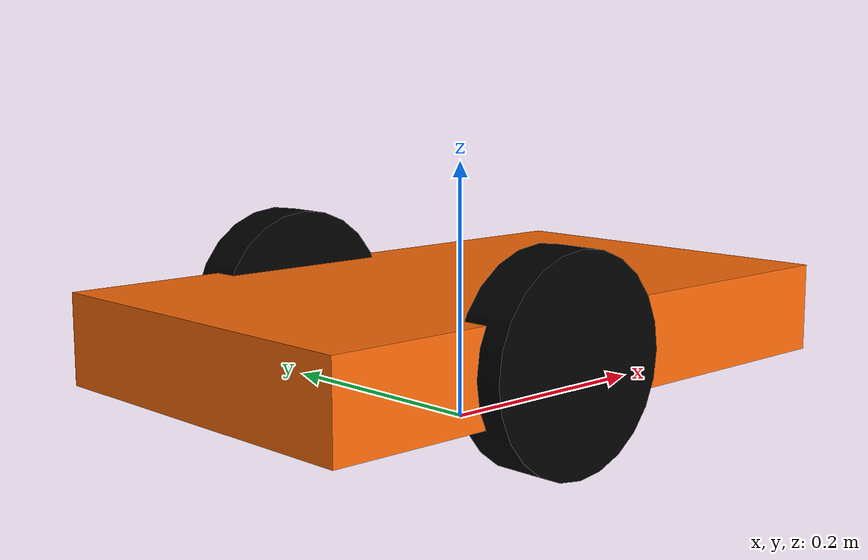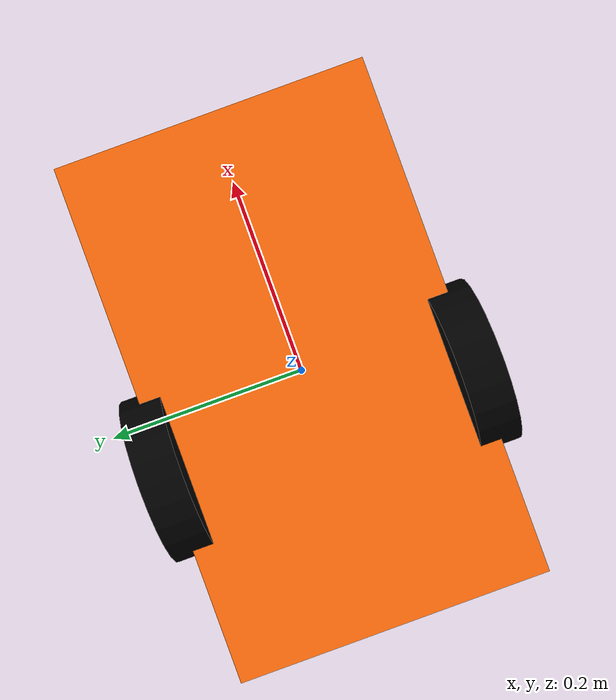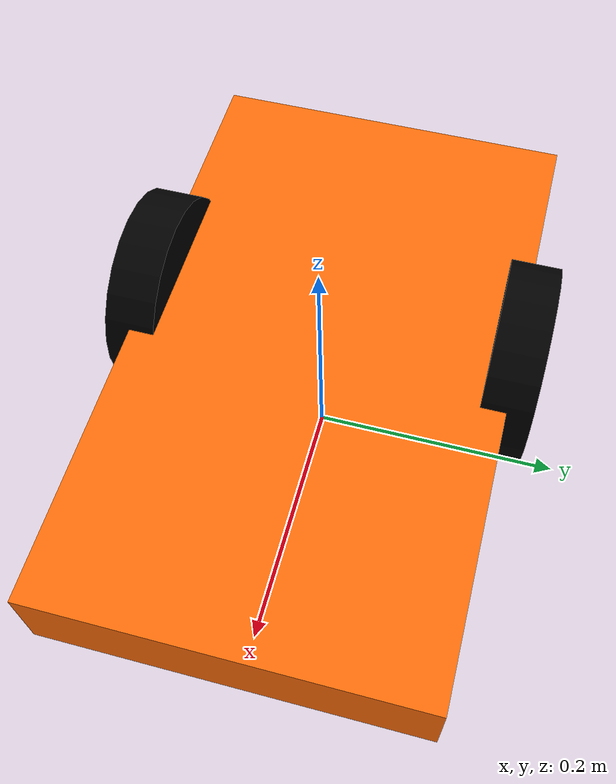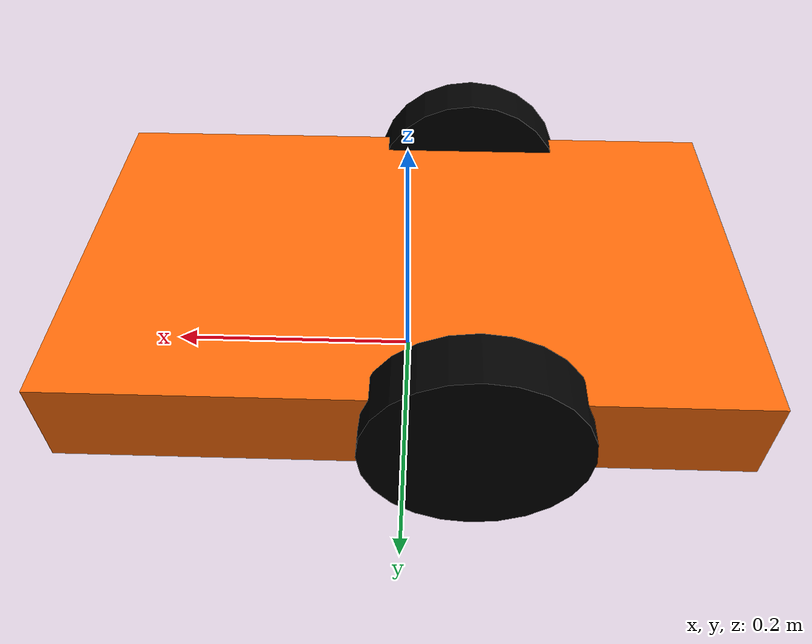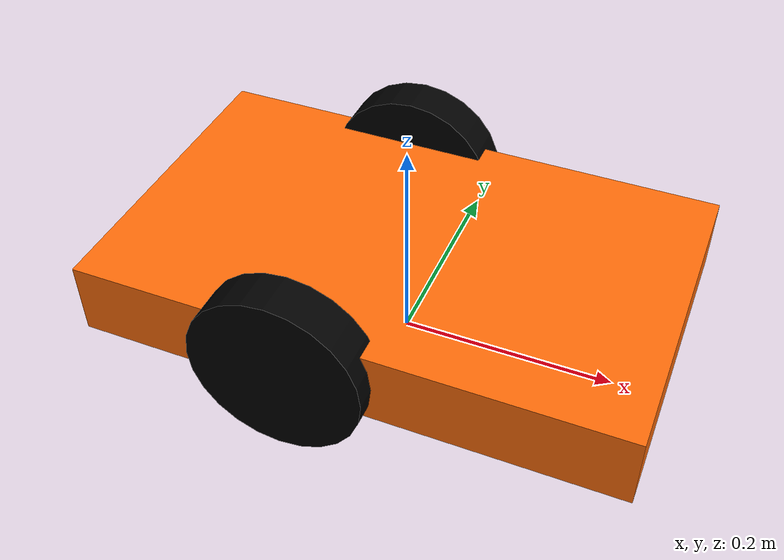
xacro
<?xml version="1.0" ?>
<robot name="my_robot" xmlns:xacro="http://www.ros.org/wiki/xacro">
    <material name="black">
        <color rgba="0.0 0.0 0.0 1.0"/>
    </material>
    <material name="green">
        <color rgba="0.0 1.0 0.0 1.0"/>
    </material>
    <material name="orange">
        <color rgba="1.0 0.423529411765 0.0392156862745 1.0"/>
    </material>
    <material name="brown">
        <color rgba="0.870588235294 0.811764705882 0.764705882353 1.0"/>
    </material>
    <material name="red">
        <color rgba="0.80078125 0.12890625 0.1328125 1.0"/>
    </material>
    <material name="white">
        <color rgba="1.0 1.0 1.0 1.0"/>
    </material>

    <xacro:property name="wheel_radius" value="0.08"/>
    <xacro:property name="pi" value="3.14"/>
    <xacro:property name="chassis_box_height" value="0.07"/>
    <xacro:property name="platform_cylinder_length" value="0.05"/>
    <xacro:property name="arm_cylinder_length" value="0.18"/>

    <link name="base_link">
        <!-- chassis box -->
        <visual>
            <origin rpy="0 0 0" xyz="0 0 ${chassis_box_height/2 + wheel_radius/2}"/>
            <geometry>
                <box size="0.5 0.3 ${chassis_box_height}"/>
            </geometry>
            <material name="orange"/>
        </visual>
    </link>
    <link name="caster_link">
    <!-- caster front -->
        <visual name="caster_front_visual">
            <origin rpy=" 0 0 0" xyz="0.2 0 0.05"/>
            <geometry>
                <sphere radius="0.05"/>
            </geometry>
            <material name="green"/>
        </visual>
    </link>
    <joint name="caster_joint" type="fixed">
        <origin rpy="0 0 0" xyz="0.0 0.0 0"/>
        <child link="caster_link"/>
        <parent link="base_link"/>
        <axis rpy="0 0 0" xyz="0 0 0"/>
    </joint>

    <link name="right_wheel_link">
        <visual>
            <origin rpy="0 1.5707 1.5707" xyz="0 0 0"/>
            <geometry>
                <cylinder length="0.04" radius="${wheel_radius}"/>
            </geometry>
            <material name="black"/>
        </visual>
    </link>

    <joint name="right_wheel_joint" type="continuous">
        <origin rpy="0 0 0" xyz="-0.05 0.15 ${chassis_box_height/2 + wheel_radius/2}"/>
        <child link="right_wheel_link"/>
        <parent link="base_link"/>
        <axis rpy="0 0 0" xyz="0 1 0"/>
        <limit effort="10000" velocity="10"/>
        <joint_properties damping="1.0" friction="1.0"/>
    </joint>

    <link name="left_wheel_link">
        <visual>
            <origin rpy="0 1.5707 1.5707" xyz="0 0 0"/>
            <geometry>
                <cylinder length="0.04" radius="${wheel_radius}"/>
            </geometry>
            <material name="black"/>
        </visual>
    </link>

    <joint name="left_wheel_joint" type="continuous">
        <origin rpy="0 0 0" xyz="-0.05 -0.15 ${chassis_box_height/2 + wheel_radius/2}"/>
        <child link="left_wheel_link"/>
        <parent link="base_link"/>
        <axis rpy="0 0 0" xyz="0 1 0"/>
        <limit effort="10000" velocity="10"/>
        <joint_properties damping="1.0" friction="1.0"/>
    </joint>

</robot>
